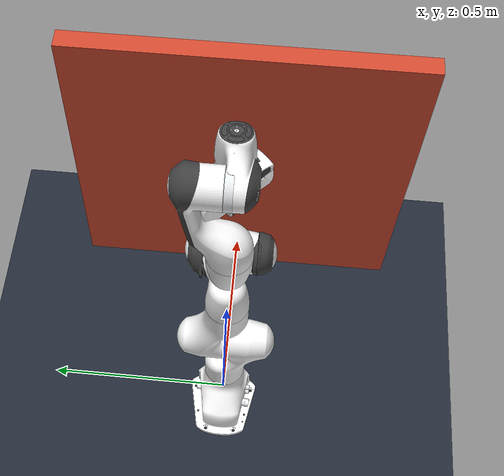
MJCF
<mujoco model="franka surface contact with tool-end wrench sensing">
  <include file="franka_scene.xml"/>

  <!-- Both sensors are at the tool TCP/COM, not at the robot wrist. -->
  <sensor>
    <force name="tool_force" site="ee_site"/>
    <torque name="tool_torque" site="ee_site"/>
  </sensor>
</mujoco>

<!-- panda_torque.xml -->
<mujoco model="panda">
  <!-- Modified by compliant-control-lab: torque actuators and a rigid contact tool were added. -->
  <compiler angle="radian" meshdir="franka_emika_panda/assets" autolimits="true"/>

  <option integrator="implicitfast"/>

  <default>
    <default class="panda">
      <material specular="0.5" shininess="0.25"/>
      <joint armature="0.1" damping="1" axis="0 0 1" range="-2.8973 2.8973"/>
      <general dyntype="none" biastype="affine" ctrlrange="-2.8973 2.8973" forcerange="-87 87"/>
      <default class="finger">
        <joint axis="0 1 0" type="slide" range="0 0.04"/>
      </default>

      <default class="visual">
        <geom type="mesh" contype="0" conaffinity="0" group="2"/>
      </default>
      <default class="collision">
        <geom type="mesh" group="3"/>
        <default class="fingertip_pad_collision_1">
          <geom type="box" size="0.0085 0.004 0.0085" pos="0 0.0055 0.0445"/>
        </default>
        <default class="fingertip_pad_collision_2">
          <geom type="box" size="0.003 0.002 0.003" pos="0.0055 0.002 0.05"/>
        </default>
        <default class="fingertip_pad_collision_3">
          <geom type="box" size="0.003 0.002 0.003" pos="-0.0055 0.002 0.05"/>
        </default>
        <default class="fingertip_pad_collision_4">
          <geom type="box" size="0.003 0.002 0.0035" pos="0.0055 0.002 0.0395"/>
        </default>
        <default class="fingertip_pad_collision_5">
          <geom type="box" size="0.003 0.002 0.0035" pos="-0.0055 0.002 0.0395"/>
        </default>
      </default>
    </default>
  </default>

  <asset>
    <material class="panda" name="white" rgba="1 1 1 1"/>
    <material class="panda" name="off_white" rgba="0.901961 0.921569 0.929412 1"/>
    <material class="panda" name="black" rgba="0.25 0.25 0.25 1"/>
    <material class="panda" name="green" rgba="0 1 0 1"/>
    <material class="panda" name="light_blue" rgba="0.039216 0.541176 0.780392 1"/>

    <!-- Collision meshes -->
    <mesh name="link0_c" file="link0.stl"/>
    <mesh name="link1_c" file="link1.stl"/>
    <mesh name="link2_c" file="link2.stl"/>
    <mesh name="link3_c" file="link3.stl"/>
    <mesh name="link4_c" file="link4.stl"/>
    <mesh name="link5_c0" file="link5_collision_0.obj"/>
    <mesh name="link5_c1" file="link5_collision_1.obj"/>
    <mesh name="link5_c2" file="link5_collision_2.obj"/>
    <mesh name="link6_c" file="link6.stl"/>
    <mesh name="link7_c" file="link7.stl"/>
    <mesh name="hand_c" file="hand.stl"/>

    <!-- Visual meshes -->
    <mesh file="link0_0.obj"/>
    <mesh file="link0_1.obj"/>
    <mesh file="link0_2.obj"/>
    <mesh file="link0_3.obj"/>
    <mesh file="link0_4.obj"/>
    <mesh file="link0_5.obj"/>
    <mesh file="link0_7.obj"/>
    <mesh file="link0_8.obj"/>
    <mesh file="link0_9.obj"/>
    <mesh file="link0_10.obj"/>
    <mesh file="link0_11.obj"/>
    <mesh file="link1.obj"/>
    <mesh file="link2.obj"/>
    <mesh file="link3_0.obj"/>
    <mesh file="link3_1.obj"/>
    <mesh file="link3_2.obj"/>
    <mesh file="link3_3.obj"/>
    <mesh file="link4_0.obj"/>
    <mesh file="link4_1.obj"/>
    <mesh file="link4_2.obj"/>
    <mesh file="link4_3.obj"/>
    <mesh file="link5_0.obj"/>
    <mesh file="link5_1.obj"/>
    <mesh file="link5_2.obj"/>
    <mesh file="link6_0.obj"/>
    <mesh file="link6_1.obj"/>
    <mesh file="link6_2.obj"/>
    <mesh file="link6_3.obj"/>
    <mesh file="link6_4.obj"/>
    <mesh file="link6_5.obj"/>
    <mesh file="link6_6.obj"/>
    <mesh file="link6_7.obj"/>
    <mesh file="link6_8.obj"/>
    <mesh file="link6_9.obj"/>
    <mesh file="link6_10.obj"/>
    <mesh file="link6_11.obj"/>
    <mesh file="link6_12.obj"/>
    <mesh file="link6_13.obj"/>
    <mesh file="link6_14.obj"/>
    <mesh file="link6_15.obj"/>
    <mesh file="link6_16.obj"/>
    <mesh file="link7_0.obj"/>
    <mesh file="link7_1.obj"/>
    <mesh file="link7_2.obj"/>
    <mesh file="link7_3.obj"/>
    <mesh file="link7_4.obj"/>
    <mesh file="link7_5.obj"/>
    <mesh file="link7_6.obj"/>
    <mesh file="link7_7.obj"/>
    <mesh file="hand_0.obj"/>
    <mesh file="hand_1.obj"/>
    <mesh file="hand_2.obj"/>
    <mesh file="hand_3.obj"/>
    <mesh file="hand_4.obj"/>
    <mesh file="finger_0.obj"/>
    <mesh file="finger_1.obj"/>
  </asset>

  <worldbody>
    <light name="top" pos="0 0 2" mode="trackcom"/>
    <body name="link0" childclass="panda">
      <inertial mass="0.629769" pos="-0.041018 -0.00014 0.049974"
        fullinertia="0.00315 0.00388 0.004285 8.2904e-7 0.00015 8.2299e-6"/>
      <geom mesh="link0_0" material="off_white" class="visual"/>
      <geom mesh="link0_1" material="black" class="visual"/>
      <geom mesh="link0_2" material="off_white" class="visual"/>
      <geom mesh="link0_3" material="black" class="visual"/>
      <geom mesh="link0_4" material="off_white" class="visual"/>
      <geom mesh="link0_5" material="black" class="visual"/>
      <geom mesh="link0_7" material="white" class="visual"/>
      <geom mesh="link0_8" material="white" class="visual"/>
      <geom mesh="link0_9" material="black" class="visual"/>
      <geom mesh="link0_10" material="off_white" class="visual"/>
      <geom mesh="link0_11" material="white" class="visual"/>
      <geom mesh="link0_c" class="collision"/>
      <body name="link1" pos="0 0 0.333">
        <inertial mass="4.970684" pos="0.003875 0.002081 -0.04762"
          fullinertia="0.70337 0.70661 0.0091170 -0.00013900 0.0067720 0.019169"/>
        <joint name="joint1"/>
        <geom material="white" mesh="link1" class="visual"/>
        <geom mesh="link1_c" class="collision"/>
        <body name="link2" quat="1 -1 0 0">
          <inertial mass="0.646926" pos="-0.003141 -0.02872 0.003495"
            fullinertia="0.0079620 2.8110e-2 2.5995e-2 -3.925e-3 1.0254e-2 7.04e-4"/>
          <joint name="joint2" range="-1.7628 1.7628"/>
          <geom material="white" mesh="link2" class="visual"/>
          <geom mesh="link2_c" class="collision"/>
          <body name="link3" pos="0 -0.316 0" quat="1 1 0 0">
            <joint name="joint3"/>
            <inertial mass="3.228604" pos="2.7518e-2 3.9252e-2 -6.6502e-2"
              fullinertia="3.7242e-2 3.6155e-2 1.083e-2 -4.761e-3 -1.1396e-2 -1.2805e-2"/>
            <geom mesh="link3_0" material="white" class="visual"/>
            <geom mesh="link3_1" material="white" class="visual"/>
            <geom mesh="link3_2" material="white" class="visual"/>
            <geom mesh="link3_3" material="black" class="visual"/>
            <geom mesh="link3_c" class="collision"/>
            <body name="link4" pos="0.0825 0 0" quat="1 1 0 0">
              <inertial mass="3.587895" pos="-5.317e-2 1.04419e-1 2.7454e-2"
                fullinertia="2.5853e-2 1.9552e-2 2.8323e-2 7.796e-3 -1.332e-3 8.641e-3"/>
              <joint name="joint4" range="-3.0718 -0.0698"/>
              <geom mesh="link4_0" material="white" class="visual"/>
              <geom mesh="link4_1" material="white" class="visual"/>
              <geom mesh="link4_2" material="black" class="visual"/>
              <geom mesh="link4_3" material="white" class="visual"/>
              <geom mesh="link4_c" class="collision"/>
              <body name="link5" pos="-0.0825 0.384 0" quat="1 -1 0 0">
                <inertial mass="1.225946" pos="-1.1953e-2 4.1065e-2 -3.8437e-2"
                  fullinertia="3.5549e-2 2.9474e-2 8.627e-3 -2.117e-3 -4.037e-3 2.29e-4"/>
                <joint name="joint5"/>
                <geom mesh="link5_0" material="black" class="visual"/>
                <geom mesh="link5_1" material="white" class="visual"/>
                <geom mesh="link5_2" material="white" class="visual"/>
                <geom mesh="link5_c0" class="collision"/>
                <geom mesh="link5_c1" class="collision"/>
                <geom mesh="link5_c2" class="collision"/>
                <body name="link6" quat="1 1 0 0">
                  <inertial mass="1.666555" pos="6.0149e-2 -1.4117e-2 -1.0517e-2"
                    fullinertia="1.964e-3 4.354e-3 5.433e-3 1.09e-4 -1.158e-3 3.41e-4"/>
                  <joint name="joint6" range="-0.0175 3.7525"/>
                  <geom mesh="link6_0" material="off_white" class="visual"/>
                  <geom mesh="link6_1" material="white" class="visual"/>
                  <geom mesh="link6_2" material="black" class="visual"/>
                  <geom mesh="link6_3" material="white" class="visual"/>
                  <geom mesh="link6_4" material="white" class="visual"/>
                  <geom mesh="link6_5" material="white" class="visual"/>
                  <geom mesh="link6_6" material="white" class="visual"/>
                  <geom mesh="link6_7" material="light_blue" class="visual"/>
                  <geom mesh="link6_8" material="light_blue" class="visual"/>
                  <geom mesh="link6_9" material="black" class="visual"/>
                  <geom mesh="link6_10" material="black" class="visual"/>
                  <geom mesh="link6_11" material="white" class="visual"/>
                  <geom mesh="link6_12" material="green" class="visual"/>
                  <geom mesh="link6_13" material="white" class="visual"/>
                  <geom mesh="link6_14" material="black" class="visual"/>
                  <geom mesh="link6_15" material="black" class="visual"/>
                  <geom mesh="link6_16" material="white" class="visual"/>
                  <geom mesh="link6_c" class="collision"/>
                  <body name="link7" pos="0.088 0 0" quat="1 1 0 0">
                    <inertial mass="7.35522e-01" pos="1.0517e-2 -4.252e-3 6.1597e-2"
                      fullinertia="1.2516e-2 1.0027e-2 4.815e-3 -4.28e-4 -1.196e-3 -7.41e-4"/>
                    <joint name="joint7"/>
                    <geom mesh="link7_0" material="white" class="visual"/>
                    <geom mesh="link7_1" material="black" class="visual"/>
                    <geom mesh="link7_2" material="black" class="visual"/>
                    <geom mesh="link7_3" material="black" class="visual"/>
                    <geom mesh="link7_4" material="black" class="visual"/>
                    <geom mesh="link7_5" material="black" class="visual"/>
                    <geom mesh="link7_6" material="black" class="visual"/>
                    <geom mesh="link7_7" material="white" class="visual"/>
                    <geom mesh="link7_c" class="collision"/>
                    <body name="hand" pos="0 0 0.107" quat="0.9238795 0 0 -0.3826834">
                      <inertial mass="0.73" pos="-0.01 0 0.03" diaginertia="0.001 0.0025 0.0017"/>
                      <geom mesh="hand_0" material="off_white" class="visual"/>
                      <geom mesh="hand_1" material="black" class="visual"/>
                      <geom mesh="hand_2" material="black" class="visual"/>
                      <geom mesh="hand_3" material="white" class="visual"/>
                      <geom mesh="hand_4" material="off_white" class="visual"/>
                      <geom mesh="hand_c" class="collision"/>
                      <body name="contact_tool" pos="0.06 0 0.145">
                        <inertial mass="0.10" pos="0 0 0" diaginertia="0.00003 0.00003 0.00003"/>
                        <geom name="tool_tip" type="sphere" size="0.025" mass="0.10"
                          rgba="0.95 0.75 0.15 1" friction="0.45 0.05 0.005"/>
                        <site name="ee_site" size="0.010" rgba="0.15 1 0.25 1"/>
                      </body>
                      <body name="left_finger" pos="0 0 0.0584">
                        <inertial mass="0.015" pos="0 0 0" diaginertia="2.375e-6 2.375e-6 7.5e-7"/>
                        <joint name="finger_joint1" class="finger"/>
                        <geom mesh="finger_0" material="off_white" class="visual"/>
                        <geom mesh="finger_1" material="black" class="visual"/>
                        <geom mesh="finger_0" class="collision"/>
                        <geom class="fingertip_pad_collision_1"/>
                        <geom class="fingertip_pad_collision_2"/>
                        <geom class="fingertip_pad_collision_3"/>
                        <geom class="fingertip_pad_collision_4"/>
                        <geom class="fingertip_pad_collision_5"/>
                      </body>
                      <body name="right_finger" pos="0 0 0.0584" quat="0 0 0 1">
                        <inertial mass="0.015" pos="0 0 0" diaginertia="2.375e-6 2.375e-6 7.5e-7"/>
                        <joint name="finger_joint2" class="finger"/>
                        <geom mesh="finger_0" material="off_white" class="visual"/>
                        <geom mesh="finger_1" material="black" class="visual"/>
                        <geom mesh="finger_0" class="collision"/>
                        <geom class="fingertip_pad_collision_1"/>
                        <geom class="fingertip_pad_collision_2"/>
                        <geom class="fingertip_pad_collision_3"/>
                        <geom class="fingertip_pad_collision_4"/>
                        <geom class="fingertip_pad_collision_5"/>
                      </body>
                    </body>
                  </body>
                </body>
              </body>
            </body>
          </body>
        </body>
      </body>
    </body>
  </worldbody>

  <tendon>
    <fixed name="split">
      <joint joint="finger_joint1" coef="0.5"/>
      <joint joint="finger_joint2" coef="0.5"/>
    </fixed>
  </tendon>

  <equality>
    <joint joint1="finger_joint1" joint2="finger_joint2" solimp="0.95 0.99 0.001" solref="0.005 1"/>
  </equality>

  <actuator>
    <motor name="actuator1" joint="joint1" ctrllimited="true" ctrlrange="-87 87"/>
    <motor name="actuator2" joint="joint2" ctrllimited="true" ctrlrange="-87 87"/>
    <motor name="actuator3" joint="joint3" ctrllimited="true" ctrlrange="-87 87"/>
    <motor name="actuator4" joint="joint4" ctrllimited="true" ctrlrange="-87 87"/>
    <motor name="actuator5" joint="joint5" ctrllimited="true" ctrlrange="-12 12"/>
    <motor name="actuator6" joint="joint6" ctrllimited="true" ctrlrange="-12 12"/>
    <motor name="actuator7" joint="joint7" ctrllimited="true" ctrlrange="-12 12"/>
    <!-- Remap original ctrlrange (0, 0.04) to (0, 255): 0.04 * 100 / 255 = 0.01568627451 -->
    <general class="panda" name="actuator8" tendon="split" forcerange="-100 100" ctrlrange="0 255"
      gainprm="0.01568627451 0 0" biasprm="0 -100 -10"/>
  </actuator>

  <keyframe>
    <key name="home" qpos="0 -0.7854 0 -2.3562 0 1.5708 0.7854 0 0" ctrl="0 0 0 0 0 0 0 0"/>
  </keyframe>

  <contact>
    <exclude body1="link0" body2="link1"/>
  </contact>
</mujoco>

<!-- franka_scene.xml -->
<mujoco model="franka compliant control scene">
  <include file="franka_emika_panda/panda_torque.xml"/>

  <option timestep="0.002" gravity="0 0 -9.81" integrator="implicitfast" cone="elliptic"/>

  <visual>
    <headlight diffuse="0.7 0.7 0.7" ambient="0.3 0.3 0.3" specular="0.2 0.2 0.2"/>
    <rgba haze="0.15 0.25 0.35 1"/>
    <global azimuth="145" elevation="-25"/>
  </visual>

  <asset>
    <texture type="skybox" builtin="gradient" rgb1="0.35 0.50 0.65" rgb2="0.03 0.04 0.06"
      width="512" height="3072"/>
    <texture type="2d" name="franka_ground" builtin="checker" mark="edge"
      rgb1="0.18 0.22 0.28" rgb2="0.08 0.10 0.14" markrgb="0.7 0.7 0.7"
      width="300" height="300"/>
    <material name="franka_ground" texture="franka_ground" texuniform="true" texrepeat="4 4"/>
  </asset>

  <worldbody>
    <light pos="0 0 2" dir="0 0 -1" directional="true"/>
    <camera name="demo" pos="-0.80 -1.10 0.90" xyaxes="0.72 -0.69 0 0.19 0.20 0.96"/>
    <geom name="floor" type="plane" size="1.5 1.5 0.05" material="franka_ground"/>
    <geom name="contact_wall" type="box" pos="0.425 0 0.52" size="0.025 0.45 0.45"
      rgba="0.80 0.28 0.18 1" friction="0.45 0.05 0.005"
      solref="0.012 1" solimp="0.95 0.99 0.002"/>
  </worldbody>
</mujoco>
